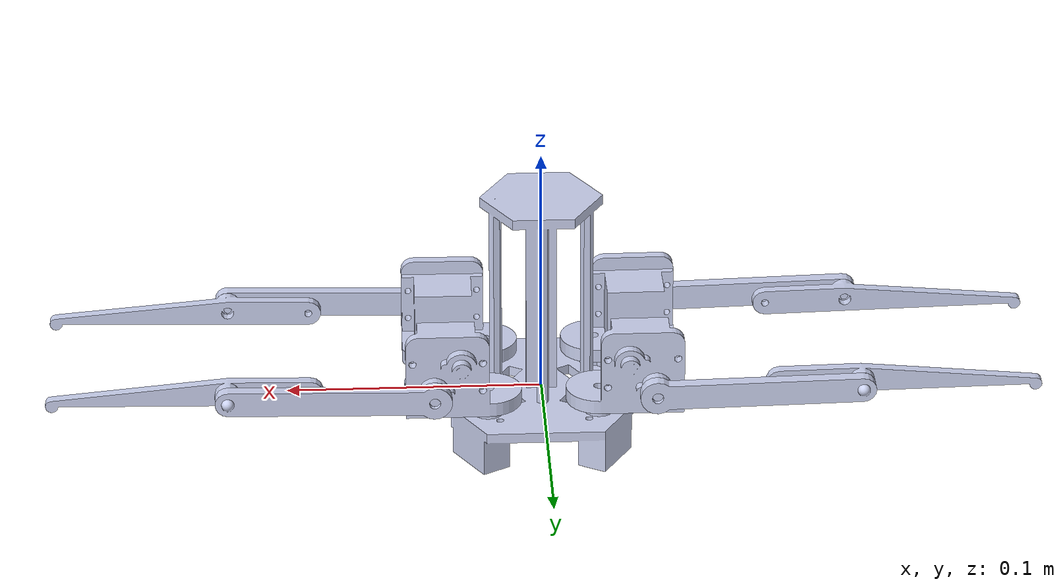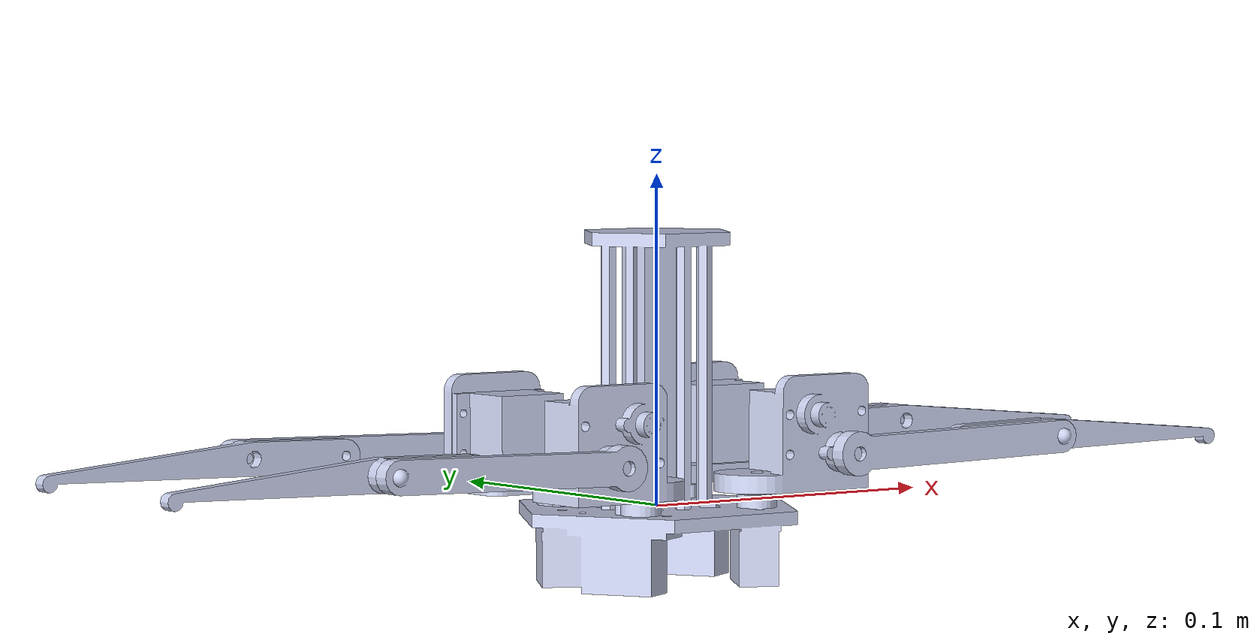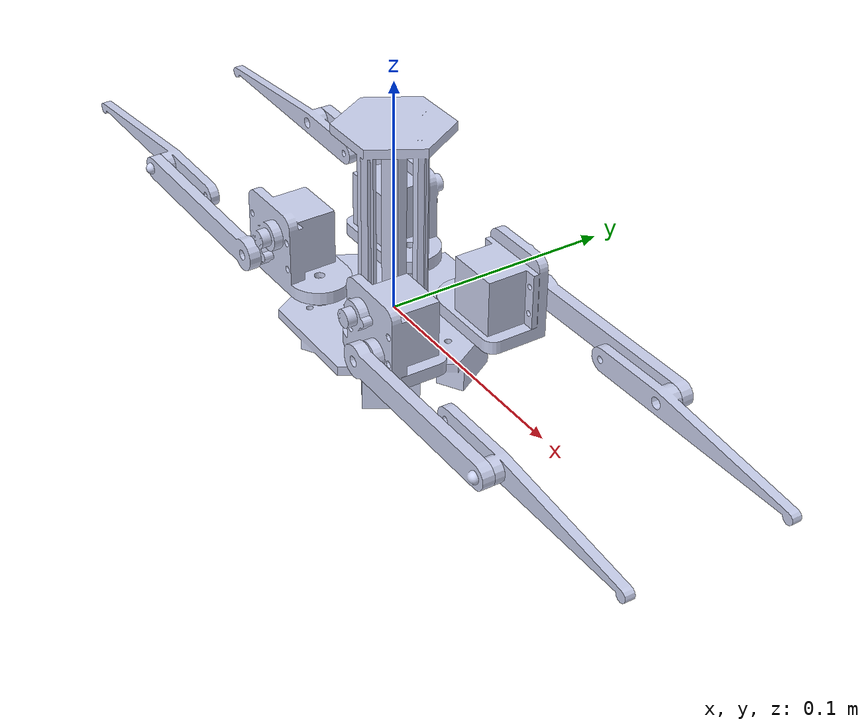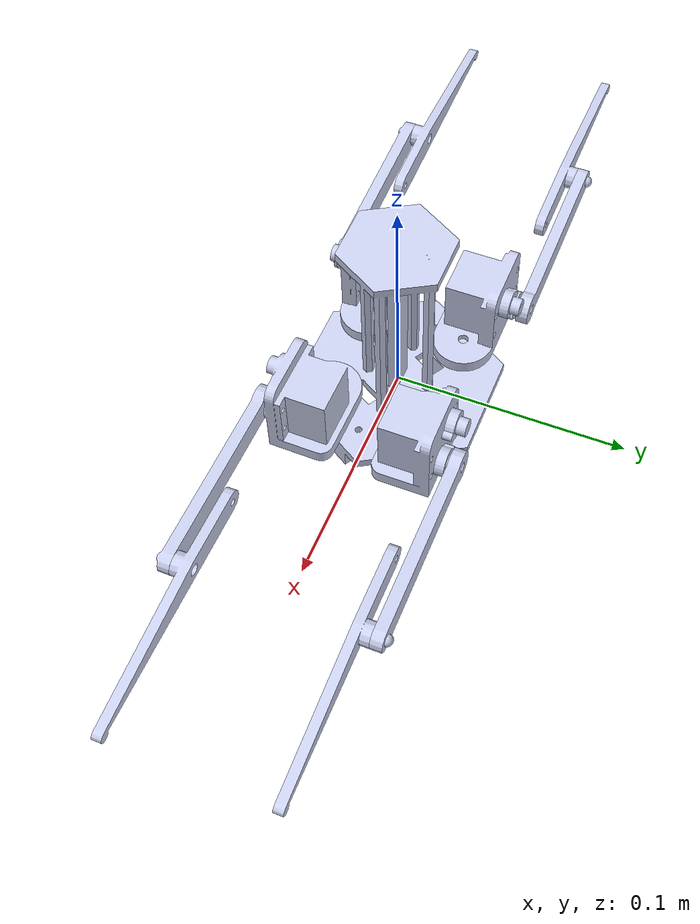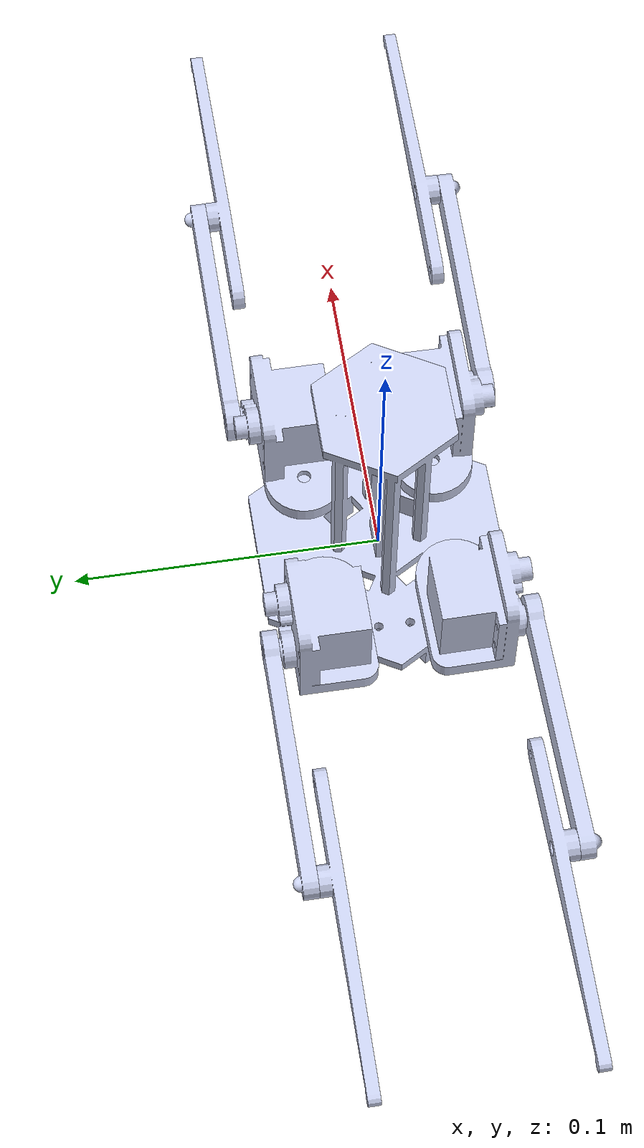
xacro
<?xml version="1.0"?>

<robot xmlns:xacro="http://www.ros.org/wiki/xacro">

  <xacro:property name="damping" value="0.7"/>
  <xacro:property name="friction" value="100.0"/>
  <xacro:property name="mu1" value="10000.0"/>
  <xacro:property name="mu2" value="10000.0"/>
  <xacro:property name="fdir" value="0 0 1"/>
  <xacro:property name="minDepth" value="0.002"/>
  <xacro:property name="kp" value="1000000"/>
  <xacro:property name="kd" value="100"/>
  <xacro:property name="maxVel" value="3"/>

  <link
    name="base_link">
    <inertial>
      <origin
        xyz="4.8572E-17 -1.5266E-16 0.0084941"
        rpy="0 0 0" />
      <mass
        value="0.060284" />
      <inertia
        ixx="1.7074E-05"
        ixy="9.3954E-22"
        ixz="1.4561E-22"
        iyy="1.5241E-05"
        iyz="1.7946E-21"
        izz="1.7946E-05" />
    </inertial>
    <visual>
      <origin
        xyz="0 0 0"
        rpy="0 0 0" />
      <geometry>
        <mesh
          filename="package://spyderbot/meshes/base_link.STL" />
      </geometry>
      <material
        name="">
        <color
          rgba="0.79216 0.81961 0.93333 1" />
      </material>
    </visual>
    <collision>
      <origin
        xyz="0 0 0"
        rpy="0 0 0" />
      <geometry>
        <mesh
          filename="package://spyderbot/meshes/base_link.STL" />
      </geometry>
    </collision>
  </link>

  <!--FR1_LINK -->
  <link
    name="fr1_link">
    <inertial>
      <origin
        xyz="0.014906 0.0026628 0.0097343"
        rpy="0 0 0" />
      <mass
        value="0.021948" />
      <inertia
        ixx="2.1293E-06"
        ixy="-7.3567E-08"
        ixz="-1.2618E-07"
        iyy="2.6849E-06"
        iyz="-2.8054E-07"
        izz="3.112E-06" />
    </inertial>
    <visual>
      <origin
        xyz="0 0 0"
        rpy="0 0 0" />
      <geometry>
        <mesh
          filename="package://spyderbot/meshes/fr1_link.STL" />
      </geometry>
      <material
        name="">
        <color
          rgba="0.79216 0.81961 0.93333 1" />
      </material>
    </visual>
    <collision>
      <origin
        xyz="0 0 0"
        rpy="0 0 0" />
      <geometry>
        <mesh
          filename="package://spyderbot/meshes/fr1_link.STL" />
      </geometry>
    </collision>
  </link>

  <joint
    name="fr1_joint"
    type="revolute">
    <origin
      xyz="0.021666 0.021398 0.00925"
      rpy="0 0 0" />
    <parent
      link="base_link" />
    <child
      link="fr1_link" />
    <axis
      xyz="0 0 1" />
    <limit
      lower="${-pi/2}"
      upper="${pi/2}"
      effort="1.4"
      velocity="1" />
    <dynamics
      damping="${damping}"
      friction="${friction}" />
  </joint>

  <!--FR2_LINK -->
  <link
    name="fr2_link">
    <inertial>
      <origin
        xyz="-0.040026 -0.00079036 0.0014479"
        rpy="0 0 0" />
      <mass
        value="0.0045124" />
      <inertia
        ixx="5.1688E-08"
        ixy="-5.6395E-08"
        ixz="-1.0912E-10"
        iyy="2.9064E-06"
        iyz="-1.4662E-12"
        izz="2.9369E-06" />
    </inertial>
    <visual>
      <origin
        xyz="0 0 0"
        rpy="0 0 0" />
      <geometry>
        <mesh
          filename="package://spyderbot/meshes/fr2_link.STL" />
      </geometry>
      <material
        name="">
        <color
          rgba="0.79216 0.81961 0.93333 1" />
      </material>
    </visual>
    <collision>
      <origin
        xyz="0 0 0"
        rpy="0 0 0" />
      <geometry>
        <mesh
          filename="package://spyderbot/meshes/fr2_link.STL" />
      </geometry>
    </collision>
  </link>

  <joint
    name="fr2_joint"
    type="revolute">
    <origin
      xyz="0.021474 0.022026 0.00725"
      rpy="-1.5708 0 3.1416" />
    <parent
      link="fr1_link" />
    <child
      link="fr2_link" />
    <axis
      xyz="-0.0011869 0 -1" />
    <limit
      lower="${-pi/2}"
      upper="${pi/2}"
      effort="1.4"
      velocity="1" />
    <dynamics
      damping="${damping}"
      friction="${friction}" />
  </joint>

  <!-- FR3_LINK -->
  <link
    name="fr3_link">
    <inertial>
      <origin
        xyz="-0.0075243 0.00070863 0.0036523"
        rpy="0 0 0" />
      <mass
        value="0.0033751" />
      <inertia
        ixx="3.166E-08"
        ixy="5.4665E-08"
        ixz="5.6243E-09"
        iyy="2.5239E-06"
        iyz="-7.4546E-10"
        izz="2.5382E-06" />
    </inertial>
    <visual>
      <origin
        xyz="0 0 0"
        rpy="0 0 0" />
      <geometry>
        <mesh
          filename="package://spyderbot/meshes/fr3_link.STL" />
      </geometry>
      <material
        name="">
        <color
          rgba="0.79216 0.81961 0.93333 1" />
      </material>
    </visual>
    <collision>
      <origin
        xyz="0 0 0"
        rpy="0 0 0" />
      <geometry>
        <mesh
          filename="package://spyderbot/meshes/fr3_link.STL" />
      </geometry>
    </collision>
  </link>

  <joint
    name="fr3_joint"
    type="revolute">
    <origin
      xyz="-0.079991 -0.0015795 0.0059051"
      rpy="0 0 0" />
    <parent
      link="fr2_link" />
    <child
      link="fr3_link" />
    <axis
      xyz="-0.0011869 0 -1" />
    <limit
      lower="${-pi}"
      upper="${pi}"
      effort="1.4"
      velocity="1" />
    <dynamics
      damping="${damping}"
      friction="${friction}" />
  </joint>

  <!-- FL1_LINK -->
  <link
    name="fl1_link">
    <inertial>
      <origin
        xyz="0.014908 -0.0026532 0.0097343"
        rpy="0 0 0" />
      <mass
        value="0.021948" />
      <inertia
        ixx="2.1292E-06"
        ixy="7.3209E-08"
        ixz="-1.2636E-07"
        iyy="2.685E-06"
        iyz="2.8046E-07"
        izz="3.112E-06" />
    </inertial>
    <visual>
      <origin
        xyz="0 0 0"
        rpy="0 0 0" />
      <geometry>
        <mesh
          filename="package://spyderbot/meshes/fl1_link.STL" />
      </geometry>
      <material
        name="">
        <color
          rgba="0.79216 0.81961 0.93333 1" />
      </material>
    </visual>
    <collision>
      <origin
        xyz="0 0 0"
        rpy="0 0 0" />
      <geometry>
        <mesh
          filename="package://spyderbot/meshes/fl1_link.STL" />
      </geometry>
    </collision>
  </link>

  <joint
    name="fl1_joint"
    type="revolute">
    <origin
      xyz="-0.021666 0.021398 0.00925"
      rpy="0 0 3.1416" />
    <parent
      link="base_link" />
    <child
      link="fl1_link" />
    <axis
      xyz="0 0 -1" />
    <limit
      lower="${-pi/2}"
      upper="${pi/2}"
      effort="1.4"
      velocity="1" />
    <dynamics
      damping="${damping}"
      friction="${friction}" />
  </joint>

  <!-- FL2_LINK -->
  <link
    name="fl2_link">
    <inertial>
      <origin
        xyz="0.040025 0.0008006 -0.0014737"
        rpy="0 0 0" />
      <mass
        value="0.0045124" />
      <inertia
        ixx="5.1719E-08"
        ixy="-5.7125E-08"
        ixz="1.7484E-09"
        iyy="2.9064E-06"
        iyz="3.5293E-11"
        izz="2.9369E-06" />
    </inertial>
    <visual>
      <origin
        xyz="0 0 0"
        rpy="0 0 0" />
      <geometry>
        <mesh
          filename="package://spyderbot/meshes/fl2_link.STL" />
      </geometry>
      <material
        name="">
        <color
          rgba="0.79216 0.81961 0.93333 1" />
      </material>
    </visual>
    <collision>
      <origin
        xyz="0 0 0"
        rpy="0 0 0" />
      <geometry>
        <mesh
          filename="package://spyderbot/meshes/fl2_link.STL" />
      </geometry>
    </collision>
  </link>

  <joint
    name="fl2_joint"
    type="revolute">
    <origin
      xyz="0.021488 -0.022012 0.00725"
      rpy="1.5708 0 0" />
    <parent
      link="fl1_link" />
    <child
      link="fl2_link" />
    <axis
      xyz="0.00054313 0 -1" />
    <limit
      lower="${-pi/2}"
      upper="${pi/2}"
      effort="1.4"
      velocity="1" />
    <dynamics
      damping="${damping}"
      friction="${friction}" />
  </joint>

  <!-- FL3_LINK -->
  <link
    name="fl3_link">
    <inertial>
      <origin
        xyz="0.007522 -0.00070828 -0.0036571"
        rpy="0 0 0" />
      <mass
        value="0.0033751" />
      <inertia
        ixx="3.1663E-08"
        ixy="5.455E-08"
        ixz="7.2381E-09"
        iyy="2.5239E-06"
        iyz="-7.8032E-10"
        izz="2.5382E-06" />
    </inertial>
    <visual>
      <origin
        xyz="0 0 0"
        rpy="0 0 0" />
      <geometry>
        <mesh
          filename="package://spyderbot/meshes/fl3_link.STL" />
      </geometry>
      <material
        name="">
        <color
          rgba="0.79216 0.81961 0.93333 1" />
      </material>
    </visual>
    <collision>
      <origin
        xyz="0 0 0"
        rpy="0 0 0" />
      <geometry>
        <mesh
          filename="package://spyderbot/meshes/fl3_link.STL" />
      </geometry>
    </collision>
  </link>

  <joint
    name="fl3_joint"
    type="revolute">
    <origin
      xyz="0.079987 0.0015999 -0.0059566"
      rpy="0 0 0" />
    <parent
      link="fl2_link" />
    <child
      link="fl3_link" />
    <axis
      xyz="0.00054313 0 -1" />
    <limit
      lower="${-pi}"
      upper="${pi}"
      effort="1.4"
      velocity="1" />
    <dynamics
      damping="${damping}"
      friction="${friction}" />
  </joint>

  <!-- RR1_LINK -->
  <link
    name="rr1_link">
    <inertial>
      <origin
        xyz="-0.014877 0.0028196 0.0097343"
        rpy="0 0 0" />
      <mass
        value="0.021948" />
      <inertia
        ixx="2.1309E-06"
        ixy="7.9402E-08"
        ixz="1.2322E-07"
        iyy="2.6833E-06"
        iyz="-2.8185E-07"
        izz="3.112E-06" />
    </inertial>
    <visual>
      <origin
        xyz="0 0 0"
        rpy="0 0 0" />
      <geometry>
        <mesh
          filename="package://spyderbot/meshes/rr1_link.STL" />
      </geometry>
      <material
        name="">
        <color
          rgba="0.79216 0.81961 0.93333 1" />
      </material>
    </visual>
    <collision>
      <origin
        xyz="0 0 0"
        rpy="0 0 0" />
      <geometry>
        <mesh
          filename="package://spyderbot/meshes/rr1_link.STL" />
      </geometry>
    </collision>
  </link>

  <joint
    name="rr1_joint"
    type="revolute">
    <origin
      xyz="0.021666 -0.021398 0.00925"
      rpy="0 0 3.1416" />
    <parent
      link="base_link" />
    <child
      link="rr1_link" />
    <axis
      xyz="0 0 -1" />
    <limit
      lower="${-pi/2}"
      upper="${pi/2}"
      effort="1.4"
      velocity="1" />
    <dynamics
      damping="${damping}"
      friction="${friction}" />
  </joint>

  <!-- RR2_LINK -->
  <link
    name="rr2_link">
    <inertial>
      <origin
        xyz="-0.040039 0.00077869 0.0010263"
        rpy="0 0 0" />
      <mass
        value="0.0045124" />
      <inertia
        ixx="5.1978E-08"
        ixy="5.5559E-08"
        ixz="-3.0497E-08"
        iyy="2.9065E-06"
        iyz="5.8666E-10"
        izz="2.9366E-06" />
    </inertial>
    <visual>
      <origin
        xyz="0 0 0"
        rpy="0 0 0" />
      <geometry>
        <mesh
          filename="package://spyderbot/meshes/rr2_link.STL" />
      </geometry>
      <material
        name="">
        <color
          rgba="0.79216 0.81961 0.93333 1" />
      </material>
    </visual>
    <collision>
      <origin
        xyz="0 0 0"
        rpy="0 0 0" />
      <geometry>
        <mesh
          filename="package://spyderbot/meshes/rr2_link.STL" />
      </geometry>
    </collision>
  </link>

  <joint
    name="rr2_joint"
    type="revolute">
    <origin
      xyz="-0.021241 0.02225 0.00725"
      rpy="1.5708 0 0" />
    <parent
      link="rr1_link" />
    <child
      link="rr2_link" />
    <axis
      xyz="-0.01172 0 0.99993" />
    <limit
      lower="${-pi/2}"
      upper="${pi/2}"
      effort="1.4"
      velocity="1" />
    <dynamics
      damping="${damping}"
      friction="${friction}" />
  </joint>

  <!-- RR3_LINK -->
  <link
    name="rr3_link">
    <inertial>
      <origin
        xyz="-0.0075628 -0.00070432 0.0035728"
        rpy="0 0 0" />
      <mass
        value="0.0033751" />
      <inertia
        ixx="3.1758E-08"
        ixy="-5.3241E-08"
        ixz="-2.0777E-08"
        iyy="2.524E-06"
        iyz="1.8146E-10"
        izz="2.5381E-06" />
    </inertial>
    <visual>
      <origin
        xyz="0 0 0"
        rpy="0 0 0" />
      <geometry>
        <mesh
          filename="package://spyderbot/meshes/rr3_link.STL" />
      </geometry>
      <material
        name="">
        <color
          rgba="0.79216 0.81961 0.93333 1" />
      </material>
    </visual>
    <collision>
      <origin
        xyz="0 0 0"
        rpy="0 0 0" />
      <geometry>
        <mesh
          filename="package://spyderbot/meshes/rr3_link.STL" />
      </geometry>
    </collision>
  </link>

  <joint
    name="rr3_joint"
    type="revolute">
    <origin
      xyz="-0.08005 0.0015561 0.0050622"
      rpy="0 0 0" />
    <parent
      link="rr2_link" />
    <child
      link="rr3_link" />
    <axis
      xyz="-0.01172 0 0.99993" />
    <limit
      lower="${-pi}"
      upper="${pi}"
      effort="1.4"
      velocity="1" />
    <dynamics
      damping="${damping}"
      friction="${friction}" />
  </joint>

  <!--RL1_LINK -->
  <link
    name="rl1_link">
    <inertial>
      <origin
        xyz="0.01488 0.0028025 0.0097343"
        rpy="0 0 0" />
      <mass
        value="0.021948" />
      <inertia
        ixx="2.1307E-06"
        ixy="-7.8768E-08"
        ixz="-1.2354E-07"
        iyy="2.6834E-06"
        iyz="-2.8171E-07"
        izz="3.112E-06" />
    </inertial>
    <visual>
      <origin
        xyz="0 0 0"
        rpy="0 0 0" />
      <geometry>
        <mesh
          filename="package://spyderbot/meshes/rl1_link.STL" />
      </geometry>
      <material
        name="">
        <color
          rgba="0.79216 0.81961 0.93333 1" />
      </material>
    </visual>
    <collision>
      <origin
        xyz="0 0 0"
        rpy="0 0 0" />
      <geometry>
        <mesh
          filename="package://spyderbot/meshes/rl1_link.STL" />
      </geometry>
    </collision>
  </link>

  <joint
    name="rl1_joint"
    type="revolute">
    <origin
      xyz="-0.021666 -0.021398 0.00925"
      rpy="0 0 3.1416" />
    <parent
      link="base_link" />
    <child
      link="rl1_link" />
    <axis
      xyz="0 0 1" />
    <limit
      lower="${-pi/2}"
      upper="${pi/2}"
      effort="1.4"
      velocity="1" />
    <dynamics
      damping="${damping}"
      friction="${friction}" />
  </joint>

  <!-- RL2_LINK -->
  <link
    name="rl2_link">
    <inertial>
      <origin
        xyz="0.040038 0.00080023 0.0010722"
        rpy="0 0 0" />
      <mass
        value="0.0045124" />
      <inertia
        ixx="5.1973E-08"
        ixy="-5.7096E-08"
        ixz="2.7185E-08"
        iyy="2.9064E-06"
        iyz="5.3734E-10"
        izz="2.9367E-06" />
    </inertial>
    <visual>
      <origin
        xyz="0 0 0"
        rpy="0 0 0" />
      <geometry>
        <mesh
          filename="package://spyderbot/meshes/rl2_link.STL" />
      </geometry>
      <material
        name="">
        <color
          rgba="0.79216 0.81961 0.93333 1" />
      </material>
    </visual>
    <collision>
      <origin
        xyz="0 0 0"
        rpy="0 0 0" />
      <geometry>
        <mesh
          filename="package://spyderbot/meshes/rl2_link.STL" />
      </geometry>
    </collision>
  </link>

  <joint
    name="rl2_joint"
    type="revolute">
    <origin
      xyz="0.021266 0.022226 0.00725"
      rpy="1.5708 0 0" />
    <parent
      link="rl1_link" />
    <child
      link="rl2_link" />
    <axis
      xyz="0.010572 0 -0.99994" />
    <limit
      lower="${-pi/2}"
      upper="${pi/2}"
      effort="1.4"
      velocity="1" />
    <dynamics
      damping="${damping}"
      friction="${friction}" />
  </joint>

  <!-- RL3_LINK -->
  <link
    name="rl3_link">
    <inertial>
      <origin
        xyz="0.0075583 -0.00070834 0.0035815"
        rpy="0 0 0" />
      <mass
        value="0.0033751" />
      <inertia
        ixx="3.1771E-08"
        ixy="5.4574E-08"
        ixz="1.7899E-08"
        iyy="2.5239E-06"
        iyz="2.3309E-10"
        izz="2.5381E-06" />
    </inertial>
    <visual>
      <origin
        xyz="0 0 0"
        rpy="0 0 0" />
      <geometry>
        <mesh
          filename="package://spyderbot/meshes/rl3_link.STL" />
      </geometry>
      <material
        name="">
        <color
          rgba="0.79216 0.81961 0.93333 1" />
      </material>
    </visual>
    <collision>
      <origin
        xyz="0 0 0"
        rpy="0 0 0" />
      <geometry>
        <mesh
          filename="package://spyderbot/meshes/rl3_link.STL" />
      </geometry>
    </collision>
  </link>

  <joint
    name="rl3_joint"
    type="revolute">
    <origin
      xyz="0.080043 0.0015992 0.0051541"
      rpy="0 0 0" />
    <parent
      link="rl2_link" />
    <child
      link="rl3_link" />
    <axis
      xyz="0.010572 0 -0.99994" />
    <limit
      lower="${-pi}"
      upper="${pi}"
      effort="1.4"
      velocity="1" />
    <dynamics
      damping="${damping}"
      friction="${friction}" />
  </joint>

  <!-- GAZEBO REF -->

  <gazebo reference="base_link">
    <material>Gazebo/Red</material>
    <minDepth>${minDepth}</minDepth>
	<mu1 value="${mu1}"/>
    <mu2 value="${mu2}"/>
  </gazebo>

  <gazebo reference="fr1_link">
    <material>Gazebo/Black</material>
    <maxVel>${maxVel}</maxVel>
	<mu1 value="${mu1}"/>
    <mu2 value="${mu2}"/>
  </gazebo>

  <gazebo reference="fr2_link">
    <material>Gazebo/Red</material>
    <maxVel>${maxVel}</maxVel>
	<mu1 value="${mu1}"/>
    <mu2 value="${mu2}"/>
  </gazebo>

  <gazebo reference="fr3_link">
    <material>Gazebo/Black</material>
    <mu1 value="${mu1}"/>
    <mu2 value="${mu2}"/>
	<fdir1>${fdir}</fdir1>
    <maxVel>${maxVel}</maxVel>
    <minDepth>${minDepth}</minDepth>
    <kp>${kp}</kp>
    <kd>${kd}</kd>
  </gazebo>

  <gazebo reference="fl1_link">
    <material>Gazebo/Black</material>
    <maxVel>${maxVel}</maxVel>
	<mu1 value="${mu1}"/>
    <mu2 value="${mu2}"/>
  </gazebo>

  <gazebo reference="fl2_link">
    <material>Gazebo/Red</material>
    <maxVel>${maxVel}</maxVel>
	<mu1 value="${mu1}"/>
    <mu2 value="${mu2}"/>
  </gazebo>

  <gazebo reference="fl3_link">
    <material>Gazebo/Black</material>
    <mu1 value="${mu1}"/>
    <mu2 value="${mu2}"/>
	<fdir1>${fdir}</fdir1>
    <maxVel>${maxVel}</maxVel>
    <minDepth>${minDepth}</minDepth>
    <kp>${kp}</kp>
    <kd>${kd}</kd>
  </gazebo>

  <gazebo reference="rr1_link">
    <material>Gazebo/Black</material>
    <maxVel>${maxVel}</maxVel>
	<mu1 value="${mu1}"/>
    <mu2 value="${mu2}"/>
  </gazebo>

  <gazebo reference="rr2_link">
    <material>Gazebo/Red</material>
    <maxVel>${maxVel}</maxVel>
	<mu1 value="${mu1}"/>
    <mu2 value="${mu2}"/>
  </gazebo>

  <gazebo reference="rr3_link">
    <material>Gazebo/Black</material>
    <mu1 value="${mu1}"/>
    <mu2 value="${mu2}"/>
	<fdir1>${fdir}</fdir1>
    <maxVel>${maxVel}</maxVel>
    <minDepth>${minDepth}</minDepth>
    <kp>${kp}</kp>
    <kd>${kd}</kd>
  </gazebo>

  <gazebo reference="rl1_link">
    <material>Gazebo/Black</material>
    <maxVel>${maxVel}</maxVel>
	<mu1 value="${mu1}"/>
    <mu2 value="${mu2}"/>
  </gazebo>

  <gazebo reference="rl2_link">
    <material>Gazebo/Red</material>
    <maxVel>${maxVel}</maxVel>
	<mu1 value="${mu1}"/>
    <mu2 value="${mu2}"/>
  </gazebo>

  <gazebo reference="rl3_link">
    <material>Gazebo/Black</material>
    <mu1 value="${mu1}"/>
    <mu2 value="${mu2}"/>
	<fdir1>${fdir}</fdir1>
    <maxVel>${maxVel}</maxVel>
    <minDepth>${minDepth}</minDepth>
    <kp>${kp}</kp>
    <kd>${kd}</kd>
  </gazebo>

  <!-- GAZEBO CONTROL -->
  <ros2_control name="GazeboSystem" type="system">
    <hardware>
      <plugin>gazebo_ros2_control/GazeboSystem</plugin>
    </hardware>

    <joint name="fr1_joint">
      <command_interface name="position">
        <param name="min">${-pi/2}</param>
        <param name="max">${pi/2}</param>
      </command_interface>
      <state_interface name="position">
        <param name="initial_value">${0}</param>
      </state_interface>
      <state_interface name="velocity"/>
      <state_interface name="effort"/>
    </joint>

    <joint name="fr2_joint">
      <command_interface name="position">
        <param name="min">${-pi/2}</param>
        <param name="max">${pi/2}</param>
      </command_interface>
      <state_interface name="position">
        <param name="initial_value">${0}</param>
      </state_interface>
      <state_interface name="velocity"/>
      <state_interface name="effort"/>
    </joint>

    <joint name="fr3_joint">
      <command_interface name="position">
        <param name="min">${-pi}</param>
        <param name="max">${pi}</param>
      </command_interface>
      <state_interface name="position">
        <param name="initial_value">${0}</param>
      </state_interface>
      <state_interface name="velocity"/>
      <state_interface name="effort"/>
    </joint>

    <joint name="fl1_joint">
      <command_interface name="position">
        <param name="min">${-pi/2}</param>
        <param name="max">${pi/2}</param>
      </command_interface>
      <state_interface name="position">
        <param name="initial_value">${0}</param>
      </state_interface>
      <state_interface name="velocity"/>
      <state_interface name="effort"/>
    </joint>

    <joint name="fl2_joint">
      <command_interface name="position">
        <param name="min">${-pi/2}</param>
        <param name="max">${pi/2}</param>
      </command_interface>
      <state_interface name="position">
        <param name="initial_value">${0}</param>
      </state_interface>
      <state_interface name="velocity"/>
      <state_interface name="effort"/>
    </joint>

    <joint name="fl3_joint">
      <command_interface name="position">
        <param name="min">${-pi}</param>
        <param name="max">${pi}</param>
      </command_interface>
      <state_interface name="position">
        <param name="initial_value">${0}</param>
      </state_interface>
      <state_interface name="velocity"/>
      <state_interface name="effort"/>
    </joint>

    <joint name="rr1_joint">
      <command_interface name="position">
        <param name="min">${-pi/2}</param>
        <param name="max">${pi/2}</param>
      </command_interface>
      <state_interface name="position">
        <param name="initial_value">${0}</param>
      </state_interface>
      <state_interface name="velocity"/>
      <state_interface name="effort"/>
    </joint>

    <joint name="rr2_joint">
      <command_interface name="position">
        <param name="min">${-pi/2}</param>
        <param name="max">${pi/2}</param>
      </command_interface>
      <state_interface name="position">
        <param name="initial_value">${0}</param>
      </state_interface>
      <state_interface name="velocity"/>
      <state_interface name="effort"/>
    </joint>

    <joint name="rr3_joint">
      <command_interface name="position">
        <param name="min">${-pi}</param>
        <param name="max">${pi}</param>
      </command_interface>
      <state_interface name="position">
        <param name="initial_value">${0}</param>
      </state_interface>
      <state_interface name="velocity"/>
      <state_interface name="effort"/>
    </joint>

    <joint name="rl1_joint">
      <command_interface name="position">
        <param name="min">${-pi/2}</param>
        <param name="max">${pi/2}</param>
      </command_interface>
      <state_interface name="position">
        <param name="initial_value">${0}</param>
      </state_interface>
      <state_interface name="velocity"/>
      <state_interface name="effort"/>
    </joint>

    <joint name="rl2_joint">
      <command_interface name="position">
        <param name="min">${-pi/2}</param>
        <param name="max">${pi/2}</param>
      </command_interface>
      <state_interface name="position">
        <param name="initial_value">${0}</param>
      </state_interface>
      <state_interface name="velocity"/>
      <state_interface name="effort"/>
    </joint>

    <joint name="rl3_joint">
      <command_interface name="position">
        <param name="min">${-pi}</param>
        <param name="max">${pi}</param>
      </command_interface>
      <state_interface name="position">
        <param name="initial_value">${0}</param>
      </state_interface>
      <state_interface name="velocity"/>
      <state_interface name="effort"/>
    </joint>
  </ros2_control>

  <transmission name="tran1">
    <type>transmission_interface/SimpleTransmission</type>
    <joint name="fr1_joint">
      <hardwareInterface>hardware_interface/EffortJointInterface</hardwareInterface>
    </joint>
    <actuator name="motor1">
      <hardwareInterface>hardware_interface/EffortJointInterface</hardwareInterface>
      <mechanicalReduction>5</mechanicalReduction>
    </actuator>
  </transmission>

  <transmission name="tran2">
    <type>transmission_interface/SimpleTransmission</type>
    <joint name="fr2_joint">
      <hardwareInterface>hardware_interface/EffortJointInterface</hardwareInterface>
    </joint>
    <actuator name="motor2">
      <hardwareInterface>hardware_interface/EffortJointInterface</hardwareInterface>
      <mechanicalReduction>5</mechanicalReduction>
    </actuator>
  </transmission>

  <transmission name="tran3">
    <type>transmission_interface/SimpleTransmission</type>
    <joint name="fr3_joint">
      <hardwareInterface>hardware_interface/EffortJointInterface</hardwareInterface>
    </joint>
    <actuator name="motor3">
      <hardwareInterface>hardware_interface/EffortJointInterface</hardwareInterface>
      <mechanicalReduction>5</mechanicalReduction>
    </actuator>
  </transmission>

  <transmission name="tran4">
    <type>transmission_interface/SimpleTransmission</type>
    <joint name="fl1_joint">
      <hardwareInterface>hardware_interface/EffortJointInterface</hardwareInterface>
    </joint>
    <actuator name="motor4">
      <hardwareInterface>hardware_interface/EffortJointInterface</hardwareInterface>
      <mechanicalReduction>5</mechanicalReduction>
    </actuator>
  </transmission>

  <transmission name="tran5">
    <type>transmission_interface/SimpleTransmission</type>
    <joint name="fl2_joint">
      <hardwareInterface>hardware_interface/EffortJointInterface</hardwareInterface>
    </joint>
    <actuator name="motor5">
      <hardwareInterface>hardware_interface/EffortJointInterface</hardwareInterface>
      <mechanicalReduction>5</mechanicalReduction>
    </actuator>
  </transmission>

  <transmission name="tran6">
    <type>transmission_interface/SimpleTransmission</type>
    <joint name="fl3_joint">
      <hardwareInterface>hardware_interface/EffortJointInterface</hardwareInterface>
    </joint>
    <actuator name="motor6">
      <hardwareInterface>hardware_interface/EffortJointInterface</hardwareInterface>
      <mechanicalReduction>5</mechanicalReduction>
    </actuator>
  </transmission>

  <transmission name="tran7">
    <type>transmission_interface/SimpleTransmission</type>
    <joint name="rr1_joint">
      <hardwareInterface>hardware_interface/EffortJointInterface</hardwareInterface>
    </joint>
    <actuator name="motor7">
      <hardwareInterface>hardware_interface/EffortJointInterface</hardwareInterface>
      <mechanicalReduction>5</mechanicalReduction>
    </actuator>
  </transmission>

  <transmission name="tran8">
    <type>transmission_interface/SimpleTransmission</type>
    <joint name="rr2_joint">
      <hardwareInterface>hardware_interface/EffortJointInterface</hardwareInterface>
    </joint>
    <actuator name="motor8">
      <hardwareInterface>hardware_interface/EffortJointInterface</hardwareInterface>
      <mechanicalReduction>5</mechanicalReduction>
    </actuator>
  </transmission>

  <transmission name="tran9">
    <type>transmission_interface/SimpleTransmission</type>
    <joint name="rr3_joint">
      <hardwareInterface>hardware_interface/EffortJointInterface</hardwareInterface>
    </joint>
    <actuator name="motor9">
      <hardwareInterface>hardware_interface/EffortJointInterface</hardwareInterface>
      <mechanicalReduction>5</mechanicalReduction>
    </actuator>
  </transmission>

  <transmission name="tran10">
    <type>transmission_interface/SimpleTransmission</type>
    <joint name="rl1_joint">
      <hardwareInterface>hardware_interface/EffortJointInterface</hardwareInterface>
    </joint>
    <actuator name="motor10">
      <hardwareInterface>hardware_interface/EffortJointInterface</hardwareInterface>
      <mechanicalReduction>5</mechanicalReduction>
    </actuator>
  </transmission>

  <transmission name="tran11">
    <type>transmission_interface/SimpleTransmission</type>
    <joint name="rl2_joint">
      <hardwareInterface>hardware_interface/EffortJointInterface</hardwareInterface>
    </joint>
    <actuator name="motor11">
      <hardwareInterface>hardware_interface/EffortJointInterface</hardwareInterface>
      <mechanicalReduction>5</mechanicalReduction>
    </actuator>
  </transmission>

  <transmission name="tran12">
    <type>transmission_interface/SimpleTransmission</type>
    <joint name="rl3_joint">
      <hardwareInterface>hardware_interface/EffortJointInterface</hardwareInterface>
    </joint>
    <actuator name="motor12">
      <hardwareInterface>hardware_interface/EffortJointInterface</hardwareInterface>
      <mechanicalReduction>5</mechanicalReduction>
    </actuator>
  </transmission>
</robot>
